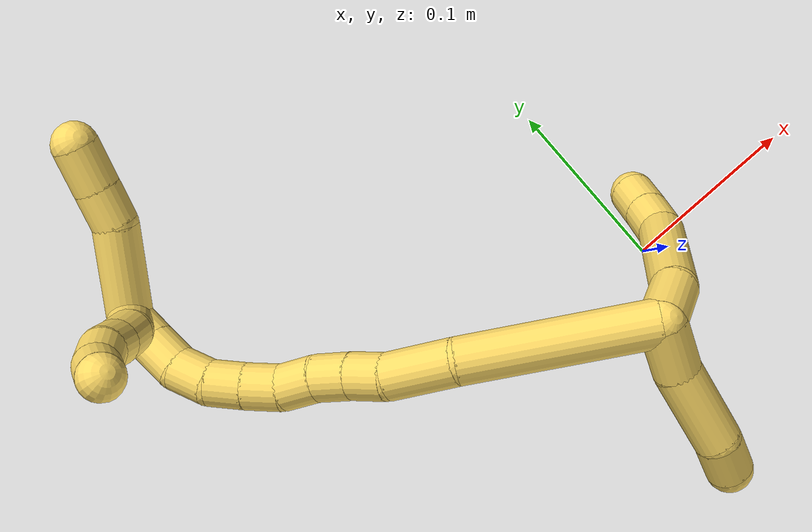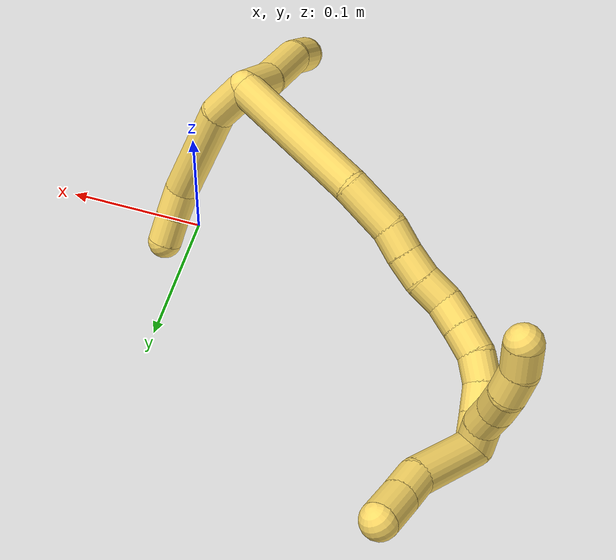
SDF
<sdf version="1.7">
 <world name="default">
  <model name="5">
   <static>0</static>
   <link name="5">
    <collision name="collision-cylinder-e_1_2_8">
     <pose>0.014347 -0.001409 -0.006451 2.92658 1.13947 2.80777</pose>
     <geometry><cylinder><radius>0.0125</radius><length>0.031586</length></cylinder></geometry>
     <surface>
      <friction><ode><mu>1.16</mu><mu2>1.16</mu2><slip1>0</slip1><slip2>0</slip2></ode></friction>
      <contact><ode><kp>1e+06</kp><kd>1</kd><max_vel>0</max_vel><min_depth>0.001</min_depth></ode></contact>
     </surface>
    </collision>
    <visual name="visual-cylinder-e_1_2_8">
     <pose>0.014347 -0.001409 -0.006451 2.92658 1.13947 2.80777</pose>
     <geometry><cylinder><radius>0.0125</radius><length>0.031586</length></cylinder></geometry>
     <material><ambient>1 0.858824 0.4 1</ambient></material>
    </visual>
    <collision name="collision-cylinder-e_2_8_9">
     <pose>0.056912 -0.002127 -0.03723 -3.11323 0.85909 -3.07969</pose>
     <geometry><cylinder><radius>0.0125</radius><length>0.074529</length></cylinder></geometry>
     <surface>
      <friction><ode><mu>1.16</mu><mu2>1.16</mu2><slip1>0</slip1><slip2>0</slip2></ode></friction>
      <contact><ode><kp>1e+06</kp><kd>1</kd><max_vel>0</max_vel><min_depth>0.001</min_depth></ode></contact>
     </surface>
    </collision>
    <visual name="visual-cylinder-e_2_8_9">
     <pose>0.056912 -0.002127 -0.03723 -3.11323 0.85909 -3.07969</pose>
     <geometry><cylinder><radius>0.0125</radius><length>0.074529</length></cylinder></geometry>
     <material><ambient>1 0.858824 0.4 1</ambient></material>
    </visual>
    <collision name="collision-cylinder-e_3_9_10">
     <pose>0.092489 0.00219 -0.068967 -2.68629 0.728438 -2.04948</pose>
     <geometry><cylinder><radius>0.0125</radius><length>0.022109</length></cylinder></geometry>
     <surface>
      <friction><ode><mu>1.16</mu><mu2>1.16</mu2><slip1>0</slip1><slip2>0</slip2></ode></friction>
      <contact><ode><kp>1e+06</kp><kd>1</kd><max_vel>0</max_vel><min_depth>0.001</min_depth></ode></contact>
     </surface>
    </collision>
    <visual name="visual-cylinder-e_3_9_10">
     <pose>0.092489 0.00219 -0.068967 -2.68629 0.728438 -2.04948</pose>
     <geometry><cylinder><radius>0.0125</radius><length>0.022109</length></cylinder></geometry>
     <material><ambient>1 0.858824 0.4 1</ambient></material>
    </visual>
    <collision name="collision-cylinder-e_4_10_6">
     <pose>0.1069 0.009717 -0.083699 -2.65231 0.704469 -1.94836</pose>
     <geometry><cylinder><radius>0.0125</radius><length>0.021776</length></cylinder></geometry>
     <surface>
      <friction><ode><mu>1.16</mu><mu2>1.16</mu2><slip1>0</slip1><slip2>0</slip2></ode></friction>
      <contact><ode><kp>1e+06</kp><kd>1</kd><max_vel>0</max_vel><min_depth>0.001</min_depth></ode></contact>
     </surface>
    </collision>
    <visual name="visual-cylinder-e_4_10_6">
     <pose>0.1069 0.009717 -0.083699 -2.65231 0.704469 -1.94836</pose>
     <geometry><cylinder><radius>0.0125</radius><length>0.021776</length></cylinder></geometry>
     <material><ambient>1 0.858824 0.4 1</ambient></material>
    </visual>
    <collision name="collision-cylinder-e_1_2_11">
     <pose>-0.003249 -0.012698 -0.007264 2.0904 -0.218578 -0.373937</pose>
     <geometry><cylinder><radius>0.0125</radius><length>0.02997</length></cylinder></geometry>
     <surface>
      <friction><ode><mu>1.16</mu><mu2>1.16</mu2><slip1>0</slip1><slip2>0</slip2></ode></friction>
      <contact><ode><kp>1e+06</kp><kd>1</kd><max_vel>0</max_vel><min_depth>0.001</min_depth></ode></contact>
     </surface>
    </collision>
    <visual name="visual-cylinder-e_1_2_11">
     <pose>-0.003249 -0.012698 -0.007264 2.0904 -0.218578 -0.373937</pose>
     <geometry><cylinder><radius>0.0125</radius><length>0.02997</length></cylinder></geometry>
     <material><ambient>1 0.858824 0.4 1</ambient></material>
    </visual>
    <collision name="collision-cylinder-e_2_11_12">
     <pose>-0.010144 -0.047333 -0.021691 1.88643 -0.15664 -0.215535</pose>
     <geometry><cylinder><radius>0.0125</radius><length>0.046728</length></cylinder></geometry>
     <surface>
      <friction><ode><mu>1.16</mu><mu2>1.16</mu2><slip1>0</slip1><slip2>0</slip2></ode></friction>
      <contact><ode><kp>1e+06</kp><kd>1</kd><max_vel>0</max_vel><min_depth>0.001</min_depth></ode></contact>
     </surface>
    </collision>
    <visual name="visual-cylinder-e_2_11_12">
     <pose>-0.010144 -0.047333 -0.021691 1.88643 -0.15664 -0.215535</pose>
     <geometry><cylinder><radius>0.0125</radius><length>0.046728</length></cylinder></geometry>
     <material><ambient>1 0.858824 0.4 1</ambient></material>
    </visual>
    <collision name="collision-cylinder-e_3_12_5">
     <pose>-0.014531 -0.079146 -0.034993 2.12697 -0.063827 -0.114743</pose>
     <geometry><cylinder><radius>0.0125</radius><length>0.023302</length></cylinder></geometry>
     <surface>
      <friction><ode><mu>1.16</mu><mu2>1.16</mu2><slip1>0</slip1><slip2>0</slip2></ode></friction>
      <contact><ode><kp>1e+06</kp><kd>1</kd><max_vel>0</max_vel><min_depth>0.001</min_depth></ode></contact>
     </surface>
    </collision>
    <visual name="visual-cylinder-e_3_12_5">
     <pose>-0.014531 -0.079146 -0.034993 2.12697 -0.063827 -0.114743</pose>
     <geometry><cylinder><radius>0.0125</radius><length>0.023302</length></cylinder></geometry>
     <material><ambient>1 0.858824 0.4 1</ambient></material>
    </visual>
    <collision name="collision-cylinder-e_1_2_13">
     <pose>-0.027795 0.030329 -0.030275 -2.35529 -0.575394 1.23942</pose>
     <geometry><cylinder><radius>0.0125</radius><length>0.102156</length></cylinder></geometry>
     <surface>
      <friction><ode><mu>1.16</mu><mu2>1.16</mu2><slip1>0</slip1><slip2>0</slip2></ode></friction>
      <contact><ode><kp>1e+06</kp><kd>1</kd><max_vel>0</max_vel><min_depth>0.001</min_depth></ode></contact>
     </surface>
    </collision>
    <visual name="visual-cylinder-e_1_2_13">
     <pose>-0.027795 0.030329 -0.030275 -2.35529 -0.575394 1.23942</pose>
     <geometry><cylinder><radius>0.0125</radius><length>0.102156</length></cylinder></geometry>
     <material><ambient>1 0.858824 0.4 1</ambient></material>
    </visual>
    <collision name="collision-cylinder-e_2_13_14">
     <pose>-0.063902 0.069842 -0.074841 -2.57046 -0.455037 1.33552</pose>
     <geometry><cylinder><radius>0.0125</radius><length>0.037826</length></cylinder></geometry>
     <surface>
      <friction><ode><mu>1.16</mu><mu2>1.16</mu2><slip1>0</slip1><slip2>0</slip2></ode></friction>
      <contact><ode><kp>1e+06</kp><kd>1</kd><max_vel>0</max_vel><min_depth>0.001</min_depth></ode></contact>
     </surface>
    </collision>
    <visual name="visual-cylinder-e_2_13_14">
     <pose>-0.063902 0.069842 -0.074841 -2.57046 -0.455037 1.33552</pose>
     <geometry><cylinder><radius>0.0125</radius><length>0.037826</length></cylinder></geometry>
     <material><ambient>1 0.858824 0.4 1</ambient></material>
    </visual>
    <collision name="collision-cylinder-e_3_14_15">
     <pose>-0.074484 0.08493 -0.09688 -2.49033 -0.228967 0.65646</pose>
     <geometry><cylinder><radius>0.0125</radius><length>0.020002</length></cylinder></geometry>
     <surface>
      <friction><ode><mu>1.16</mu><mu2>1.16</mu2><slip1>0</slip1><slip2>0</slip2></ode></friction>
      <contact><ode><kp>1e+06</kp><kd>1</kd><max_vel>0</max_vel><min_depth>0.001</min_depth></ode></contact>
     </surface>
    </collision>
    <visual name="visual-cylinder-e_3_14_15">
     <pose>-0.074484 0.08493 -0.09688 -2.49033 -0.228967 0.65646</pose>
     <geometry><cylinder><radius>0.0125</radius><length>0.020002</length></cylinder></geometry>
     <material><ambient>1 0.858824 0.4 1</ambient></material>
    </visual>
    <collision name="collision-cylinder-e_4_15_16">
     <pose>-0.079954 0.096552 -0.112187 -2.4941 -0.325617 0.91047</pose>
     <geometry><cylinder><radius>0.0125</radius><length>0.020009</length></cylinder></geometry>
     <surface>
      <friction><ode><mu>1.16</mu><mu2>1.16</mu2><slip1>0</slip1><slip2>0</slip2></ode></friction>
      <contact><ode><kp>1e+06</kp><kd>1</kd><max_vel>0</max_vel><min_depth>0.001</min_depth></ode></contact>
     </surface>
    </collision>
    <visual name="visual-cylinder-e_4_15_16">
     <pose>-0.079954 0.096552 -0.112187 -2.4941 -0.325617 0.91047</pose>
     <geometry><cylinder><radius>0.0125</radius><length>0.020009</length></cylinder></geometry>
     <material><ambient>1 0.858824 0.4 1</ambient></material>
    </visual>
    <collision name="collision-cylinder-e_5_16_17">
     <pose>-0.087793 0.10674 -0.127397 -2.61273 -0.482223 1.47457</pose>
     <geometry><cylinder><radius>0.0125</radius><length>0.020001</length></cylinder></geometry>
     <surface>
      <friction><ode><mu>1.16</mu><mu2>1.16</mu2><slip1>0</slip1><slip2>0</slip2></ode></friction>
      <contact><ode><kp>1e+06</kp><kd>1</kd><max_vel>0</max_vel><min_depth>0.001</min_depth></ode></contact>
     </surface>
    </collision>
    <visual name="visual-cylinder-e_5_16_17">
     <pose>-0.087793 0.10674 -0.127397 -2.61273 -0.482223 1.47457</pose>
     <geometry><cylinder><radius>0.0125</radius><length>0.020001</length></cylinder></geometry>
     <material><ambient>1 0.858824 0.4 1</ambient></material>
    </visual>
    <collision name="collision-cylinder-e_6_17_18">
     <pose>-0.095723 0.118192 -0.141407 -2.3096 -0.335432 0.731947</pose>
     <geometry><cylinder><radius>0.0125</radius><length>0.020003</length></cylinder></geometry>
     <surface>
      <friction><ode><mu>1.16</mu><mu2>1.16</mu2><slip1>0</slip1><slip2>0</slip2></ode></friction>
      <contact><ode><kp>1e+06</kp><kd>1</kd><max_vel>0</max_vel><min_depth>0.001</min_depth></ode></contact>
     </surface>
    </collision>
    <visual name="visual-cylinder-e_6_17_18">
     <pose>-0.095723 0.118192 -0.141407 -2.3096 -0.335432 0.731947</pose>
     <geometry><cylinder><radius>0.0125</radius><length>0.020003</length></cylinder></geometry>
     <material><ambient>1 0.858824 0.4 1</ambient></material>
    </visual>
    <collision name="collision-cylinder-e_7_18_19">
     <pose>-0.101979 0.132533 -0.153855 -2.26205 -0.300909 0.623411</pose>
     <geometry><cylinder><radius>0.0125</radius><length>0.020001</length></cylinder></geometry>
     <surface>
      <friction><ode><mu>1.16</mu><mu2>1.16</mu2><slip1>0</slip1><slip2>0</slip2></ode></friction>
      <contact><ode><kp>1e+06</kp><kd>1</kd><max_vel>0</max_vel><min_depth>0.001</min_depth></ode></contact>
     </surface>
    </collision>
    <visual name="visual-cylinder-e_7_18_19">
     <pose>-0.101979 0.132533 -0.153855 -2.26205 -0.300909 0.623411</pose>
     <geometry><cylinder><radius>0.0125</radius><length>0.020001</length></cylinder></geometry>
     <material><ambient>1 0.858824 0.4 1</ambient></material>
    </visual>
    <collision name="collision-cylinder-e_8_19_20">
     <pose>-0.104851 0.148076 -0.16569 -2.18292 0.009231 -0.017759</pose>
     <geometry><cylinder><radius>0.0125</radius><length>0.020001</length></cylinder></geometry>
     <surface>
      <friction><ode><mu>1.16</mu><mu2>1.16</mu2><slip1>0</slip1><slip2>0</slip2></ode></friction>
      <contact><ode><kp>1e+06</kp><kd>1</kd><max_vel>0</max_vel><min_depth>0.001</min_depth></ode></contact>
     </surface>
    </collision>
    <visual name="visual-cylinder-e_8_19_20">
     <pose>-0.104851 0.148076 -0.16569 -2.18292 0.009231 -0.017759</pose>
     <geometry><cylinder><radius>0.0125</radius><length>0.020001</length></cylinder></geometry>
     <material><ambient>1 0.858824 0.4 1</ambient></material>
    </visual>
    <collision name="collision-cylinder-e_9_20_21">
     <pose>-0.101809 0.164746 -0.175828 -2.04842 0.2994 -0.486006</pose>
     <geometry><cylinder><radius>0.0125</radius><length>0.02</length></cylinder></geometry>
     <surface>
      <friction><ode><mu>1.16</mu><mu2>1.16</mu2><slip1>0</slip1><slip2>0</slip2></ode></friction>
      <contact><ode><kp>1e+06</kp><kd>1</kd><max_vel>0</max_vel><min_depth>0.001</min_depth></ode></contact>
     </surface>
    </collision>
    <visual name="visual-cylinder-e_9_20_21">
     <pose>-0.101809 0.164746 -0.175828 -2.04842 0.2994 -0.486006</pose>
     <geometry><cylinder><radius>0.0125</radius><length>0.02</length></cylinder></geometry>
     <material><ambient>1 0.858824 0.4 1</ambient></material>
    </visual>
    <collision name="collision-cylinder-e_10_21_1">
     <pose>-0.095796 0.181764 -0.184442 -2.03028 0.31135 -0.495155</pose>
     <geometry><cylinder><radius>0.0125</radius><length>0.02</length></cylinder></geometry>
     <surface>
      <friction><ode><mu>1.16</mu><mu2>1.16</mu2><slip1>0</slip1><slip2>0</slip2></ode></friction>
      <contact><ode><kp>1e+06</kp><kd>1</kd><max_vel>0</max_vel><min_depth>0.001</min_depth></ode></contact>
     </surface>
    </collision>
    <visual name="visual-cylinder-e_10_21_1">
     <pose>-0.095796 0.181764 -0.184442 -2.03028 0.31135 -0.495155</pose>
     <geometry><cylinder><radius>0.0125</radius><length>0.02</length></cylinder></geometry>
     <material><ambient>1 0.858824 0.4 1</ambient></material>
    </visual>
    <collision name="collision-cylinder-e_1_1_22">
     <pose>-0.079429 0.209326 -0.175252 -0.95688 0.519152 -0.27374</pose>
     <geometry><cylinder><radius>0.0125</radius><length>0.053628</length></cylinder></geometry>
     <surface>
      <friction><ode><mu>1.16</mu><mu2>1.16</mu2><slip1>0</slip1><slip2>0</slip2></ode></friction>
      <contact><ode><kp>1e+06</kp><kd>1</kd><max_vel>0</max_vel><min_depth>0.001</min_depth></ode></contact>
     </surface>
    </collision>
    <visual name="visual-cylinder-e_1_1_22">
     <pose>-0.079429 0.209326 -0.175252 -0.95688 0.519152 -0.27374</pose>
     <geometry><cylinder><radius>0.0125</radius><length>0.053628</length></cylinder></geometry>
     <material><ambient>1 0.858824 0.4 1</ambient></material>
    </visual>
    <collision name="collision-cylinder-e_2_22_23">
     <pose>-0.062841 0.237905 -0.15825 -1.21112 0.311419 -0.216515</pose>
     <geometry><cylinder><radius>0.0125</radius><length>0.021437</length></cylinder></geometry>
     <surface>
      <friction><ode><mu>1.16</mu><mu2>1.16</mu2><slip1>0</slip1><slip2>0</slip2></ode></friction>
      <contact><ode><kp>1e+06</kp><kd>1</kd><max_vel>0</max_vel><min_depth>0.001</min_depth></ode></contact>
     </surface>
    </collision>
    <visual name="visual-cylinder-e_2_22_23">
     <pose>-0.062841 0.237905 -0.15825 -1.21112 0.311419 -0.216515</pose>
     <geometry><cylinder><radius>0.0125</radius><length>0.021437</length></cylinder></geometry>
     <material><ambient>1 0.858824 0.4 1</ambient></material>
    </visual>
    <collision name="collision-cylinder-e_3_23_4">
     <pose>-0.055982 0.258442 -0.149972 -1.1676 0.290786 -0.192862</pose>
     <geometry><cylinder><radius>0.0125</radius><length>0.024935</length></cylinder></geometry>
     <surface>
      <friction><ode><mu>1.16</mu><mu2>1.16</mu2><slip1>0</slip1><slip2>0</slip2></ode></friction>
      <contact><ode><kp>1e+06</kp><kd>1</kd><max_vel>0</max_vel><min_depth>0.001</min_depth></ode></contact>
     </surface>
    </collision>
    <visual name="visual-cylinder-e_3_23_4">
     <pose>-0.055982 0.258442 -0.149972 -1.1676 0.290786 -0.192862</pose>
     <geometry><cylinder><radius>0.0125</radius><length>0.024935</length></cylinder></geometry>
     <material><ambient>1 0.858824 0.4 1</ambient></material>
    </visual>
    <collision name="collision-cylinder-e_1_1_24">
     <pose>-0.098611 0.189101 -0.180663 0.148272 -0.628435 -0.048265</pose>
     <geometry><cylinder><radius>0.0125</radius><length>0.02</length></cylinder></geometry>
     <surface>
      <friction><ode><mu>1.16</mu><mu2>1.16</mu2><slip1>0</slip1><slip2>0</slip2></ode></friction>
      <contact><ode><kp>1e+06</kp><kd>1</kd><max_vel>0</max_vel><min_depth>0.001</min_depth></ode></contact>
     </surface>
    </collision>
    <visual name="visual-cylinder-e_1_1_24">
     <pose>-0.098611 0.189101 -0.180663 0.148272 -0.628435 -0.048265</pose>
     <geometry><cylinder><radius>0.0125</radius><length>0.02</length></cylinder></geometry>
     <material><ambient>1 0.858824 0.4 1</ambient></material>
    </visual>
    <collision name="collision-cylinder-e_2_24_25">
     <pose>-0.111589 0.189711 -0.165855 -0.25915 -0.789422 0.108457</pose>
     <geometry><cylinder><radius>0.0125</radius><length>0.02</length></cylinder></geometry>
     <surface>
      <friction><ode><mu>1.16</mu><mu2>1.16</mu2><slip1>0</slip1><slip2>0</slip2></ode></friction>
      <contact><ode><kp>1e+06</kp><kd>1</kd><max_vel>0</max_vel><min_depth>0.001</min_depth></ode></contact>
     </surface>
    </collision>
    <visual name="visual-cylinder-e_2_24_25">
     <pose>-0.111589 0.189711 -0.165855 -0.25915 -0.789422 0.108457</pose>
     <geometry><cylinder><radius>0.0125</radius><length>0.02</length></cylinder></geometry>
     <material><ambient>1 0.858824 0.4 1</ambient></material>
    </visual>
    <collision name="collision-cylinder-e_3_25_26">
     <pose>-0.125038 0.193649 -0.151622 -0.279769 -0.687835 0.100773</pose>
     <geometry><cylinder><radius>0.0125</radius><length>0.02</length></cylinder></geometry>
     <surface>
      <friction><ode><mu>1.16</mu><mu2>1.16</mu2><slip1>0</slip1><slip2>0</slip2></ode></friction>
      <contact><ode><kp>1e+06</kp><kd>1</kd><max_vel>0</max_vel><min_depth>0.001</min_depth></ode></contact>
     </surface>
    </collision>
    <visual name="visual-cylinder-e_3_25_26">
     <pose>-0.125038 0.193649 -0.151622 -0.279769 -0.687835 0.100773</pose>
     <geometry><cylinder><radius>0.0125</radius><length>0.02</length></cylinder></geometry>
     <material><ambient>1 0.858824 0.4 1</ambient></material>
    </visual>
    <collision name="collision-cylinder-e_4_26_27">
     <pose>-0.13814 0.195085 -0.136854 0.094674 -0.741455 -0.036823</pose>
     <geometry><cylinder><radius>0.0125</radius><length>0.02</length></cylinder></geometry>
     <surface>
      <friction><ode><mu>1.16</mu><mu2>1.16</mu2><slip1>0</slip1><slip2>0</slip2></ode></friction>
      <contact><ode><kp>1e+06</kp><kd>1</kd><max_vel>0</max_vel><min_depth>0.001</min_depth></ode></contact>
     </surface>
    </collision>
    <visual name="visual-cylinder-e_4_26_27">
     <pose>-0.13814 0.195085 -0.136854 0.094674 -0.741455 -0.036823</pose>
     <geometry><cylinder><radius>0.0125</radius><length>0.02</length></cylinder></geometry>
     <material><ambient>1 0.858824 0.4 1</ambient></material>
    </visual>
    <collision name="collision-cylinder-e_5_27_3">
     <pose>-0.149334 0.192936 -0.12067 0.162771 -0.460069 -0.038197</pose>
     <geometry><cylinder><radius>0.0125</radius><length>0.02</length></cylinder></geometry>
     <surface>
      <friction><ode><mu>1.16</mu><mu2>1.16</mu2><slip1>0</slip1><slip2>0</slip2></ode></friction>
      <contact><ode><kp>1e+06</kp><kd>1</kd><max_vel>0</max_vel><min_depth>0.001</min_depth></ode></contact>
     </surface>
    </collision>
    <visual name="visual-cylinder-e_5_27_3">
     <pose>-0.149334 0.192936 -0.12067 0.162771 -0.460069 -0.038197</pose>
     <geometry><cylinder><radius>0.0125</radius><length>0.02</length></cylinder></geometry>
     <material><ambient>1 0.858824 0.4 1</ambient></material>
    </visual>
    <collision name="collision-sphere-3">
     <pose>-0.153774 0.191484 -0.111829 0 -0 0</pose>
     <geometry><sphere><radius>0.0125</radius></sphere></geometry>
     <surface>
      <friction><ode><mu>1.16</mu><mu2>1.16</mu2><slip1>0</slip1><slip2>0</slip2></ode></friction>
      <contact><ode><kp>1e+06</kp><kd>1</kd><max_vel>0</max_vel><min_depth>0.001</min_depth></ode></contact>
     </surface>
    </collision>
    <visual name="visual-sphere-3">
     <pose>-0.153774 0.191484 -0.111829 0 -0 0</pose>
     <geometry><sphere><radius>0.0125</radius></sphere></geometry>
     <material><ambient>1 0.858824 0.4 1</ambient></material>
    </visual>
    <collision name="collision-sphere-27">
     <pose>-0.144893 0.194388 -0.129512 0 -0 0</pose>
     <geometry><sphere><radius>0.0125</radius></sphere></geometry>
     <surface>
      <friction><ode><mu>1.16</mu><mu2>1.16</mu2><slip1>0</slip1><slip2>0</slip2></ode></friction>
      <contact><ode><kp>1e+06</kp><kd>1</kd><max_vel>0</max_vel><min_depth>0.001</min_depth></ode></contact>
     </surface>
    </collision>
    <visual name="visual-sphere-27">
     <pose>-0.144893 0.194388 -0.129512 0 -0 0</pose>
     <geometry><sphere><radius>0.0125</radius></sphere></geometry>
     <material><ambient>1 0.858824 0.4 1</ambient></material>
    </visual>
    <collision name="collision-sphere-26">
     <pose>-0.131386 0.195782 -0.144196 0 -0 0</pose>
     <geometry><sphere><radius>0.0125</radius></sphere></geometry>
     <surface>
      <friction><ode><mu>1.16</mu><mu2>1.16</mu2><slip1>0</slip1><slip2>0</slip2></ode></friction>
      <contact><ode><kp>1e+06</kp><kd>1</kd><max_vel>0</max_vel><min_depth>0.001</min_depth></ode></contact>
     </surface>
    </collision>
    <visual name="visual-sphere-26">
     <pose>-0.131386 0.195782 -0.144196 0 -0 0</pose>
     <geometry><sphere><radius>0.0125</radius></sphere></geometry>
     <material><ambient>1 0.858824 0.4 1</ambient></material>
    </visual>
    <collision name="collision-sphere-25">
     <pose>-0.118689 0.191515 -0.159048 0 -0 0</pose>
     <geometry><sphere><radius>0.0125</radius></sphere></geometry>
     <surface>
      <friction><ode><mu>1.16</mu><mu2>1.16</mu2><slip1>0</slip1><slip2>0</slip2></ode></friction>
      <contact><ode><kp>1e+06</kp><kd>1</kd><max_vel>0</max_vel><min_depth>0.001</min_depth></ode></contact>
     </surface>
    </collision>
    <visual name="visual-sphere-25">
     <pose>-0.118689 0.191515 -0.159048 0 -0 0</pose>
     <geometry><sphere><radius>0.0125</radius></sphere></geometry>
     <material><ambient>1 0.858824 0.4 1</ambient></material>
    </visual>
    <collision name="collision-sphere-24">
     <pose>-0.10449 0.187906 -0.172662 0 -0 0</pose>
     <geometry><sphere><radius>0.0125</radius></sphere></geometry>
     <surface>
      <friction><ode><mu>1.16</mu><mu2>1.16</mu2><slip1>0</slip1><slip2>0</slip2></ode></friction>
      <contact><ode><kp>1e+06</kp><kd>1</kd><max_vel>0</max_vel><min_depth>0.001</min_depth></ode></contact>
     </surface>
    </collision>
    <visual name="visual-sphere-24">
     <pose>-0.10449 0.187906 -0.172662 0 -0 0</pose>
     <geometry><sphere><radius>0.0125</radius></sphere></geometry>
     <material><ambient>1 0.858824 0.4 1</ambient></material>
    </visual>
    <collision name="collision-sphere-4">
     <pose>-0.052408 0.269428 -0.145286 0 -0 0</pose>
     <geometry><sphere><radius>0.0125</radius></sphere></geometry>
     <surface>
      <friction><ode><mu>1.16</mu><mu2>1.16</mu2><slip1>0</slip1><slip2>0</slip2></ode></friction>
      <contact><ode><kp>1e+06</kp><kd>1</kd><max_vel>0</max_vel><min_depth>0.001</min_depth></ode></contact>
     </surface>
    </collision>
    <visual name="visual-sphere-4">
     <pose>-0.052408 0.269428 -0.145286 0 -0 0</pose>
     <geometry><sphere><radius>0.0125</radius></sphere></geometry>
     <material><ambient>1 0.858824 0.4 1</ambient></material>
    </visual>
    <collision name="collision-sphere-23">
     <pose>-0.059557 0.247456 -0.154659 0 -0 0</pose>
     <geometry><sphere><radius>0.0125</radius></sphere></geometry>
     <surface>
      <friction><ode><mu>1.16</mu><mu2>1.16</mu2><slip1>0</slip1><slip2>0</slip2></ode></friction>
      <contact><ode><kp>1e+06</kp><kd>1</kd><max_vel>0</max_vel><min_depth>0.001</min_depth></ode></contact>
     </surface>
    </collision>
    <visual name="visual-sphere-23">
     <pose>-0.059557 0.247456 -0.154659 0 -0 0</pose>
     <geometry><sphere><radius>0.0125</radius></sphere></geometry>
     <material><ambient>1 0.858824 0.4 1</ambient></material>
    </visual>
    <collision name="collision-sphere-22">
     <pose>-0.066125 0.228355 -0.161841 0 -0 0</pose>
     <geometry><sphere><radius>0.0125</radius></sphere></geometry>
     <surface>
      <friction><ode><mu>1.16</mu><mu2>1.16</mu2><slip1>0</slip1><slip2>0</slip2></ode></friction>
      <contact><ode><kp>1e+06</kp><kd>1</kd><max_vel>0</max_vel><min_depth>0.001</min_depth></ode></contact>
     </surface>
    </collision>
    <visual name="visual-sphere-22">
     <pose>-0.066125 0.228355 -0.161841 0 -0 0</pose>
     <geometry><sphere><radius>0.0125</radius></sphere></geometry>
     <material><ambient>1 0.858824 0.4 1</ambient></material>
    </visual>
    <collision name="collision-sphere-1">
     <pose>-0.092732 0.190296 -0.188664 0 -0 0</pose>
     <geometry><sphere><radius>0.0125</radius></sphere></geometry>
     <surface>
      <friction><ode><mu>1.16</mu><mu2>1.16</mu2><slip1>0</slip1><slip2>0</slip2></ode></friction>
      <contact><ode><kp>1e+06</kp><kd>1</kd><max_vel>0</max_vel><min_depth>0.001</min_depth></ode></contact>
     </surface>
    </collision>
    <visual name="visual-sphere-1">
     <pose>-0.092732 0.190296 -0.188664 0 -0 0</pose>
     <geometry><sphere><radius>0.0125</radius></sphere></geometry>
     <material><ambient>1 0.858824 0.4 1</ambient></material>
    </visual>
    <collision name="collision-sphere-21">
     <pose>-0.098859 0.173232 -0.18022 0 -0 0</pose>
     <geometry><sphere><radius>0.0125</radius></sphere></geometry>
     <surface>
      <friction><ode><mu>1.16</mu><mu2>1.16</mu2><slip1>0</slip1><slip2>0</slip2></ode></friction>
      <contact><ode><kp>1e+06</kp><kd>1</kd><max_vel>0</max_vel><min_depth>0.001</min_depth></ode></contact>
     </surface>
    </collision>
    <visual name="visual-sphere-21">
     <pose>-0.098859 0.173232 -0.18022 0 -0 0</pose>
     <geometry><sphere><radius>0.0125</radius></sphere></geometry>
     <material><ambient>1 0.858824 0.4 1</ambient></material>
    </visual>
    <collision name="collision-sphere-11">
     <pose>-0.006499 -0.025395 -0.014527 0 -0 0</pose>
     <geometry><sphere><radius>0.0125</radius></sphere></geometry>
     <surface>
      <friction><ode><mu>1.16</mu><mu2>1.16</mu2><slip1>0</slip1><slip2>0</slip2></ode></friction>
      <contact><ode><kp>1e+06</kp><kd>1</kd><max_vel>0</max_vel><min_depth>0.001</min_depth></ode></contact>
     </surface>
    </collision>
    <visual name="visual-sphere-11">
     <pose>-0.006499 -0.025395 -0.014527 0 -0 0</pose>
     <geometry><sphere><radius>0.0125</radius></sphere></geometry>
     <material><ambient>1 0.858824 0.4 1</ambient></material>
    </visual>
    <collision name="collision-sphere-6">
     <pose>0.113951 0.013616 -0.091021 0 -0 0</pose>
     <geometry><sphere><radius>0.0125</radius></sphere></geometry>
     <surface>
      <friction><ode><mu>1.16</mu><mu2>1.16</mu2><slip1>0</slip1><slip2>0</slip2></ode></friction>
      <contact><ode><kp>1e+06</kp><kd>1</kd><max_vel>0</max_vel><min_depth>0.001</min_depth></ode></contact>
     </surface>
    </collision>
    <visual name="visual-sphere-6">
     <pose>0.113951 0.013616 -0.091021 0 -0 0</pose>
     <geometry><sphere><radius>0.0125</radius></sphere></geometry>
     <material><ambient>1 0.858824 0.4 1</ambient></material>
    </visual>
    <collision name="collision-sphere-10">
     <pose>0.099848 0.005818 -0.076376 0 -0 0</pose>
     <geometry><sphere><radius>0.0125</radius></sphere></geometry>
     <surface>
      <friction><ode><mu>1.16</mu><mu2>1.16</mu2><slip1>0</slip1><slip2>0</slip2></ode></friction>
      <contact><ode><kp>1e+06</kp><kd>1</kd><max_vel>0</max_vel><min_depth>0.001</min_depth></ode></contact>
     </surface>
    </collision>
    <visual name="visual-sphere-10">
     <pose>0.099848 0.005818 -0.076376 0 -0 0</pose>
     <geometry><sphere><radius>0.0125</radius></sphere></geometry>
     <material><ambient>1 0.858824 0.4 1</ambient></material>
    </visual>
    <collision name="collision-sphere-9">
     <pose>0.08513 -0.001437 -0.061559 0 -0 0</pose>
     <geometry><sphere><radius>0.0125</radius></sphere></geometry>
     <surface>
      <friction><ode><mu>1.16</mu><mu2>1.16</mu2><slip1>0</slip1><slip2>0</slip2></ode></friction>
      <contact><ode><kp>1e+06</kp><kd>1</kd><max_vel>0</max_vel><min_depth>0.001</min_depth></ode></contact>
     </surface>
    </collision>
    <visual name="visual-sphere-9">
     <pose>0.08513 -0.001437 -0.061559 0 -0 0</pose>
     <geometry><sphere><radius>0.0125</radius></sphere></geometry>
     <material><ambient>1 0.858824 0.4 1</ambient></material>
    </visual>
    <collision name="collision-sphere-2">
     <geometry><sphere><radius>0.0125</radius></sphere></geometry>
     <surface>
      <friction><ode><mu>1.16</mu><mu2>1.16</mu2><slip1>0</slip1><slip2>0</slip2></ode></friction>
      <contact><ode><kp>1e+06</kp><kd>1</kd><max_vel>0</max_vel><min_depth>0.001</min_depth></ode></contact>
     </surface>
    </collision>
    <visual name="visual-sphere-2">
     <geometry><sphere><radius>0.0125</radius></sphere></geometry>
     <material><ambient>1 0.858824 0.4 1</ambient></material>
    </visual>
    <collision name="collision-sphere-19">
     <pose>-0.104943 0.139891 -0.159944 0 -0 0</pose>
     <geometry><sphere><radius>0.0125</radius></sphere></geometry>
     <surface>
      <friction><ode><mu>1.16</mu><mu2>1.16</mu2><slip1>0</slip1><slip2>0</slip2></ode></friction>
      <contact><ode><kp>1e+06</kp><kd>1</kd><max_vel>0</max_vel><min_depth>0.001</min_depth></ode></contact>
     </surface>
    </collision>
    <visual name="visual-sphere-19">
     <pose>-0.104943 0.139891 -0.159944 0 -0 0</pose>
     <geometry><sphere><radius>0.0125</radius></sphere></geometry>
     <material><ambient>1 0.858824 0.4 1</ambient></material>
    </visual>
    <collision name="collision-sphere-8">
     <pose>0.028693 -0.002818 -0.012901 0 -0 0</pose>
     <geometry><sphere><radius>0.0125</radius></sphere></geometry>
     <surface>
      <friction><ode><mu>1.16</mu><mu2>1.16</mu2><slip1>0</slip1><slip2>0</slip2></ode></friction>
      <contact><ode><kp>1e+06</kp><kd>1</kd><max_vel>0</max_vel><min_depth>0.001</min_depth></ode></contact>
     </surface>
    </collision>
    <visual name="visual-sphere-8">
     <pose>0.028693 -0.002818 -0.012901 0 -0 0</pose>
     <geometry><sphere><radius>0.0125</radius></sphere></geometry>
     <material><ambient>1 0.858824 0.4 1</ambient></material>
    </visual>
    <collision name="collision-sphere-12">
     <pose>-0.013788 -0.069271 -0.028855 0 -0 0</pose>
     <geometry><sphere><radius>0.0125</radius></sphere></geometry>
     <surface>
      <friction><ode><mu>1.16</mu><mu2>1.16</mu2><slip1>0</slip1><slip2>0</slip2></ode></friction>
      <contact><ode><kp>1e+06</kp><kd>1</kd><max_vel>0</max_vel><min_depth>0.001</min_depth></ode></contact>
     </surface>
    </collision>
    <visual name="visual-sphere-12">
     <pose>-0.013788 -0.069271 -0.028855 0 -0 0</pose>
     <geometry><sphere><radius>0.0125</radius></sphere></geometry>
     <material><ambient>1 0.858824 0.4 1</ambient></material>
    </visual>
    <collision name="collision-sphere-5">
     <pose>-0.015275 -0.089021 -0.041132 0 -0 0</pose>
     <geometry><sphere><radius>0.0125</radius></sphere></geometry>
     <surface>
      <friction><ode><mu>1.16</mu><mu2>1.16</mu2><slip1>0</slip1><slip2>0</slip2></ode></friction>
      <contact><ode><kp>1e+06</kp><kd>1</kd><max_vel>0</max_vel><min_depth>0.001</min_depth></ode></contact>
     </surface>
    </collision>
    <visual name="visual-sphere-5">
     <pose>-0.015275 -0.089021 -0.041132 0 -0 0</pose>
     <geometry><sphere><radius>0.0125</radius></sphere></geometry>
     <material><ambient>1 0.858824 0.4 1</ambient></material>
    </visual>
    <collision name="collision-sphere-13">
     <pose>-0.05559 0.060658 -0.060549 0 -0 0</pose>
     <geometry><sphere><radius>0.0125</radius></sphere></geometry>
     <surface>
      <friction><ode><mu>1.16</mu><mu2>1.16</mu2><slip1>0</slip1><slip2>0</slip2></ode></friction>
      <contact><ode><kp>1e+06</kp><kd>1</kd><max_vel>0</max_vel><min_depth>0.001</min_depth></ode></contact>
     </surface>
    </collision>
    <visual name="visual-sphere-13">
     <pose>-0.05559 0.060658 -0.060549 0 -0 0</pose>
     <geometry><sphere><radius>0.0125</radius></sphere></geometry>
     <material><ambient>1 0.858824 0.4 1</ambient></material>
    </visual>
    <collision name="collision-sphere-14">
     <pose>-0.072214 0.079026 -0.089134 0 -0 0</pose>
     <geometry><sphere><radius>0.0125</radius></sphere></geometry>
     <surface>
      <friction><ode><mu>1.16</mu><mu2>1.16</mu2><slip1>0</slip1><slip2>0</slip2></ode></friction>
      <contact><ode><kp>1e+06</kp><kd>1</kd><max_vel>0</max_vel><min_depth>0.001</min_depth></ode></contact>
     </surface>
    </collision>
    <visual name="visual-sphere-14">
     <pose>-0.072214 0.079026 -0.089134 0 -0 0</pose>
     <geometry><sphere><radius>0.0125</radius></sphere></geometry>
     <material><ambient>1 0.858824 0.4 1</ambient></material>
    </visual>
    <collision name="collision-sphere-15">
     <pose>-0.076754 0.090834 -0.104627 0 -0 0</pose>
     <geometry><sphere><radius>0.0125</radius></sphere></geometry>
     <surface>
      <friction><ode><mu>1.16</mu><mu2>1.16</mu2><slip1>0</slip1><slip2>0</slip2></ode></friction>
      <contact><ode><kp>1e+06</kp><kd>1</kd><max_vel>0</max_vel><min_depth>0.001</min_depth></ode></contact>
     </surface>
    </collision>
    <visual name="visual-sphere-15">
     <pose>-0.076754 0.090834 -0.104627 0 -0 0</pose>
     <geometry><sphere><radius>0.0125</radius></sphere></geometry>
     <material><ambient>1 0.858824 0.4 1</ambient></material>
    </visual>
    <collision name="collision-sphere-16">
     <pose>-0.083155 0.10227 -0.119747 0 -0 0</pose>
     <geometry><sphere><radius>0.0125</radius></sphere></geometry>
     <surface>
      <friction><ode><mu>1.16</mu><mu2>1.16</mu2><slip1>0</slip1><slip2>0</slip2></ode></friction>
      <contact><ode><kp>1e+06</kp><kd>1</kd><max_vel>0</max_vel><min_depth>0.001</min_depth></ode></contact>
     </surface>
    </collision>
    <visual name="visual-sphere-16">
     <pose>-0.083155 0.10227 -0.119747 0 -0 0</pose>
     <geometry><sphere><radius>0.0125</radius></sphere></geometry>
     <material><ambient>1 0.858824 0.4 1</ambient></material>
    </visual>
    <collision name="collision-sphere-17">
     <pose>-0.09243 0.11121 -0.135047 0 -0 0</pose>
     <geometry><sphere><radius>0.0125</radius></sphere></geometry>
     <surface>
      <friction><ode><mu>1.16</mu><mu2>1.16</mu2><slip1>0</slip1><slip2>0</slip2></ode></friction>
      <contact><ode><kp>1e+06</kp><kd>1</kd><max_vel>0</max_vel><min_depth>0.001</min_depth></ode></contact>
     </surface>
    </collision>
    <visual name="visual-sphere-17">
     <pose>-0.09243 0.11121 -0.135047 0 -0 0</pose>
     <geometry><sphere><radius>0.0125</radius></sphere></geometry>
     <material><ambient>1 0.858824 0.4 1</ambient></material>
    </visual>
    <collision name="collision-sphere-18">
     <pose>-0.099015 0.125174 -0.147766 0 -0 0</pose>
     <geometry><sphere><radius>0.0125</radius></sphere></geometry>
     <surface>
      <friction><ode><mu>1.16</mu><mu2>1.16</mu2><slip1>0</slip1><slip2>0</slip2></ode></friction>
      <contact><ode><kp>1e+06</kp><kd>1</kd><max_vel>0</max_vel><min_depth>0.001</min_depth></ode></contact>
     </surface>
    </collision>
    <visual name="visual-sphere-18">
     <pose>-0.099015 0.125174 -0.147766 0 -0 0</pose>
     <geometry><sphere><radius>0.0125</radius></sphere></geometry>
     <material><ambient>1 0.858824 0.4 1</ambient></material>
    </visual>
    <collision name="collision-sphere-20">
     <pose>-0.104758 0.15626 -0.171436 0 -0 0</pose>
     <geometry><sphere><radius>0.0125</radius></sphere></geometry>
     <surface>
      <friction><ode><mu>1.16</mu><mu2>1.16</mu2><slip1>0</slip1><slip2>0</slip2></ode></friction>
      <contact><ode><kp>1e+06</kp><kd>1</kd><max_vel>0</max_vel><min_depth>0.001</min_depth></ode></contact>
     </surface>
    </collision>
    <visual name="visual-sphere-20">
     <pose>-0.104758 0.15626 -0.171436 0 -0 0</pose>
     <geometry><sphere><radius>0.0125</radius></sphere></geometry>
     <material><ambient>1 0.858824 0.4 1</ambient></material>
    </visual>
    <inertial>
     <pose>-0.041874 0.08535 -0.092128 0 -0 0</pose>
     <mass>0.75</mass>
     <inertia>
      <ixx>0.000115</ixx>
      <ixy>0</ixy>
      <ixz>0</ixz>
      <iyy>0.000152</iyy>
      <iyz>0</iyz>
      <izz>-6.4e-05</izz>
     </inertia>
    </inertial>
   </link>
   <pose>-0.031573 -0.022815 0.140482 0.253118 0.490672 0.29574</pose>
  </model>
 </world>
</sdf>
